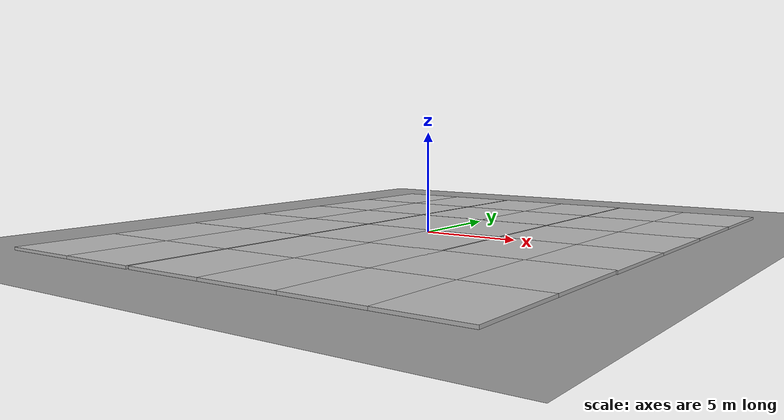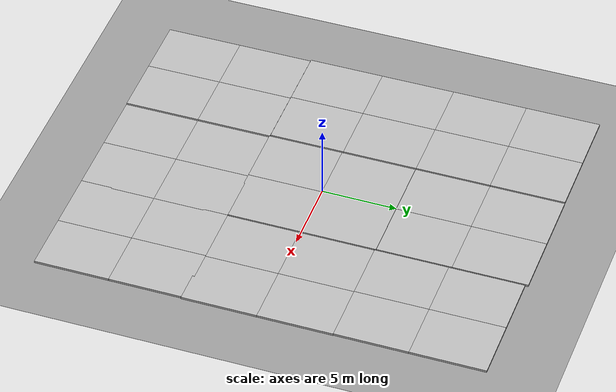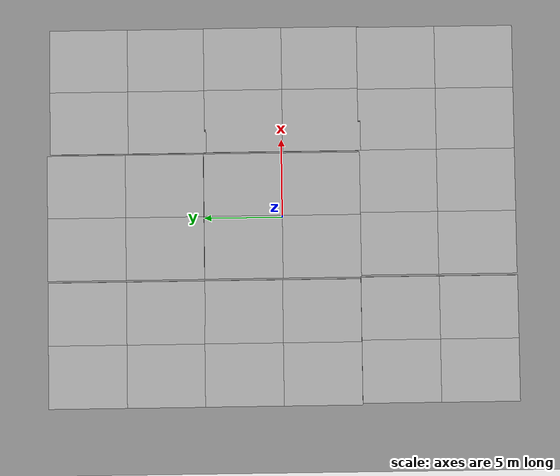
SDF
<?xml version='1.0'?>
<sdf version='1.7'>
  <model name='hydroponics.sdf'>
    <model name='ground_plane'>
      <static>1</static>
      <link name='link'>
        <collision name='collision'>
          <geometry>
            <plane>
              <normal>0 0 1</normal>
              <size>100 100</size>
            </plane>
          </geometry>
          <surface>
            <contact>
              <collide_bitmask>65535</collide_bitmask>
            </contact>
            <friction>
              <ode>
                <mu>100</mu>
                <mu2>50</mu2>
              </ode>
            </friction>
          </surface>
        </collision>
        <visual name='visual'>
          <cast_shadows>0</cast_shadows>
          <geometry>
            <plane>
              <normal>0 0 1</normal>
              <size>100 100</size>
            </plane>
          </geometry>
          <material>
            <script>
              <uri>file://media/materials/scripts/gazebo.material</uri>
              <name>Gazebo/Grey</name>
            </script>
          </material>
        </visual>
      </link>
      <pose>-1.2796 -0.083864 0 0 -0 0</pose>
    </model>
    <model name='mud_box'>
      <static>1</static>
      <link name='link'>
        <collision name='collision'>
          <geometry>
            <box>
              <size>8 10 0.2</size>
            </box>
          </geometry>
        </collision>
        <visual name='visual_1'>
          <pose>-2 2.5 0 0 -0 0</pose>
          <cast_shadows>0</cast_shadows>
          <geometry>
            <box>
              <size>4 5 0.2</size>
            </box>
          </geometry>
          <material>
            <script>
              <uri>model://mud_box/materials/scripts</uri>
              <uri>model://mud_box/materials/textures</uri>
              <name>vrc/mud</name>
            </script>
          </material>
        </visual>
        <visual name='visual_2'>
          <pose>2 2.5 0 0 -0 0</pose>
          <cast_shadows>0</cast_shadows>
          <geometry>
            <box>
              <size>4 5 0.2</size>
            </box>
          </geometry>
          <material>
            <script>
              <uri>model://mud_box/materials/scripts</uri>
              <uri>model://mud_box/materials/textures</uri>
              <name>vrc/mud</name>
            </script>
          </material>
        </visual>
        <visual name='visual_3'>
          <pose>2 -2.5 0 0 -0 0</pose>
          <cast_shadows>0</cast_shadows>
          <geometry>
            <box>
              <size>4 5 0.2</size>
            </box>
          </geometry>
          <material>
            <script>
              <uri>model://mud_box/materials/scripts</uri>
              <uri>model://mud_box/materials/textures</uri>
              <name>vrc/mud</name>
            </script>
          </material>
        </visual>
        <visual name='visual_4'>
          <pose>-2 -2.5 0 0 -0 0</pose>
          <cast_shadows>0</cast_shadows>
          <geometry>
            <box>
              <size>4 5 0.2</size>
            </box>
          </geometry>
          <material>
            <script>
              <uri>model://mud_box/materials/scripts</uri>
              <uri>model://mud_box/materials/textures</uri>
              <name>vrc/mud</name>
            </script>
          </material>
        </visual>
      </link>
      <pose>-7.98032 0.053884 0 0 -0 0</pose>
    </model>
    <model name='mud_box_0'>
      <static>1</static>
      <link name='link'>
        <collision name='collision'>
          <geometry>
            <box>
              <size>8 10 0.2</size>
            </box>
          </geometry>
        </collision>
        <visual name='visual_1'>
          <pose>-2 2.5 0 0 -0 0</pose>
          <cast_shadows>0</cast_shadows>
          <geometry>
            <box>
              <size>4 5 0.2</size>
            </box>
          </geometry>
          <material>
            <script>
              <uri>model://mud_box/materials/scripts</uri>
              <uri>model://mud_box/materials/textures</uri>
              <name>vrc/mud</name>
            </script>
          </material>
        </visual>
        <visual name='visual_2'>
          <pose>2 2.5 0 0 -0 0</pose>
          <cast_shadows>0</cast_shadows>
          <geometry>
            <box>
              <size>4 5 0.2</size>
            </box>
          </geometry>
          <material>
            <script>
              <uri>model://mud_box/materials/scripts</uri>
              <uri>model://mud_box/materials/textures</uri>
              <name>vrc/mud</name>
            </script>
          </material>
        </visual>
        <visual name='visual_3'>
          <pose>2 -2.5 0 0 -0 0</pose>
          <cast_shadows>0</cast_shadows>
          <geometry>
            <box>
              <size>4 5 0.2</size>
            </box>
          </geometry>
          <material>
            <script>
              <uri>model://mud_box/materials/scripts</uri>
              <uri>model://mud_box/materials/textures</uri>
              <name>vrc/mud</name>
            </script>
          </material>
        </visual>
        <visual name='visual_4'>
          <pose>-2 -2.5 0 0 -0 0</pose>
          <cast_shadows>0</cast_shadows>
          <geometry>
            <box>
              <size>4 5 0.2</size>
            </box>
          </geometry>
          <material>
            <script>
              <uri>model://mud_box/materials/scripts</uri>
              <uri>model://mud_box/materials/textures</uri>
              <name>vrc/mud</name>
            </script>
          </material>
        </visual>
      </link>
      <pose>-7.8782 -9.9507 0 0 -0 0</pose>
    </model>
    <model name='mud_box_1'>
      <static>1</static>
      <link name='link'>
        <collision name='collision'>
          <geometry>
            <box>
              <size>8 10 0.2</size>
            </box>
          </geometry>
        </collision>
        <visual name='visual_1'>
          <pose>-2 2.5 0 0 -0 0</pose>
          <cast_shadows>0</cast_shadows>
          <geometry>
            <box>
              <size>4 5 0.2</size>
            </box>
          </geometry>
          <material>
            <script>
              <uri>model://mud_box/materials/scripts</uri>
              <uri>model://mud_box/materials/textures</uri>
              <name>vrc/mud</name>
            </script>
          </material>
        </visual>
        <visual name='visual_2'>
          <pose>2 2.5 0 0 -0 0</pose>
          <cast_shadows>0</cast_shadows>
          <geometry>
            <box>
              <size>4 5 0.2</size>
            </box>
          </geometry>
          <material>
            <script>
              <uri>model://mud_box/materials/scripts</uri>
              <uri>model://mud_box/materials/textures</uri>
              <name>vrc/mud</name>
            </script>
          </material>
        </visual>
        <visual name='visual_3'>
          <pose>2 -2.5 0 0 -0 0</pose>
          <cast_shadows>0</cast_shadows>
          <geometry>
            <box>
              <size>4 5 0.2</size>
            </box>
          </geometry>
          <material>
            <script>
              <uri>model://mud_box/materials/scripts</uri>
              <uri>model://mud_box/materials/textures</uri>
              <name>vrc/mud</name>
            </script>
          </material>
        </visual>
        <visual name='visual_4'>
          <pose>-2 -2.5 0 0 -0 0</pose>
          <cast_shadows>0</cast_shadows>
          <geometry>
            <box>
              <size>4 5 0.2</size>
            </box>
          </geometry>
          <material>
            <script>
              <uri>model://mud_box/materials/scripts</uri>
              <uri>model://mud_box/materials/textures</uri>
              <name>vrc/mud</name>
            </script>
          </material>
        </visual>
      </link>
      <pose>-7.98798 10.0127 0 0 -0 0</pose>
    </model>
    <model name='mud_box_2'>
      <static>1</static>
      <link name='link'>
        <collision name='collision'>
          <geometry>
            <box>
              <size>8 10 0.2</size>
            </box>
          </geometry>
        </collision>
        <visual name='visual_1'>
          <pose>-2 2.5 0 0 -0 0</pose>
          <cast_shadows>0</cast_shadows>
          <geometry>
            <box>
              <size>4 5 0.2</size>
            </box>
          </geometry>
          <material>
            <script>
              <uri>model://mud_box/materials/scripts</uri>
              <uri>model://mud_box/materials/textures</uri>
              <name>vrc/mud</name>
            </script>
          </material>
        </visual>
        <visual name='visual_2'>
          <pose>2 2.5 0 0 -0 0</pose>
          <cast_shadows>0</cast_shadows>
          <geometry>
            <box>
              <size>4 5 0.2</size>
            </box>
          </geometry>
          <material>
            <script>
              <uri>model://mud_box/materials/scripts</uri>
              <uri>model://mud_box/materials/textures</uri>
              <name>vrc/mud</name>
            </script>
          </material>
        </visual>
        <visual name='visual_3'>
          <pose>2 -2.5 0 0 -0 0</pose>
          <cast_shadows>0</cast_shadows>
          <geometry>
            <box>
              <size>4 5 0.2</size>
            </box>
          </geometry>
          <material>
            <script>
              <uri>model://mud_box/materials/scripts</uri>
              <uri>model://mud_box/materials/textures</uri>
              <name>vrc/mud</name>
            </script>
          </material>
        </visual>
        <visual name='visual_4'>
          <pose>-2 -2.5 0 0 -0 0</pose>
          <cast_shadows>0</cast_shadows>
          <geometry>
            <box>
              <size>4 5 0.2</size>
            </box>
          </geometry>
          <material>
            <script>
              <uri>model://mud_box/materials/scripts</uri>
              <uri>model://mud_box/materials/textures</uri>
              <name>vrc/mud</name>
            </script>
          </material>
        </visual>
      </link>
      <pose>0.251748 -9.92117 0 0 -0 0</pose>
    </model>
    <model name='mud_box_3'>
      <static>1</static>
      <link name='link'>
        <collision name='collision'>
          <geometry>
            <box>
              <size>8 10 0.2</size>
            </box>
          </geometry>
        </collision>
        <visual name='visual_1'>
          <pose>-2 2.5 0 0 -0 0</pose>
          <cast_shadows>0</cast_shadows>
          <geometry>
            <box>
              <size>4 5 0.2</size>
            </box>
          </geometry>
          <material>
            <script>
              <uri>model://mud_box/materials/scripts</uri>
              <uri>model://mud_box/materials/textures</uri>
              <name>vrc/mud</name>
            </script>
          </material>
        </visual>
        <visual name='visual_2'>
          <pose>2 2.5 0 0 -0 0</pose>
          <cast_shadows>0</cast_shadows>
          <geometry>
            <box>
              <size>4 5 0.2</size>
            </box>
          </geometry>
          <material>
            <script>
              <uri>model://mud_box/materials/scripts</uri>
              <uri>model://mud_box/materials/textures</uri>
              <name>vrc/mud</name>
            </script>
          </material>
        </visual>
        <visual name='visual_3'>
          <pose>2 -2.5 0 0 -0 0</pose>
          <cast_shadows>0</cast_shadows>
          <geometry>
            <box>
              <size>4 5 0.2</size>
            </box>
          </geometry>
          <material>
            <script>
              <uri>model://mud_box/materials/scripts</uri>
              <uri>model://mud_box/materials/textures</uri>
              <name>vrc/mud</name>
            </script>
          </material>
        </visual>
        <visual name='visual_4'>
          <pose>-2 -2.5 0 0 -0 0</pose>
          <cast_shadows>0</cast_shadows>
          <geometry>
            <box>
              <size>4 5 0.2</size>
            </box>
          </geometry>
          <material>
            <script>
              <uri>model://mud_box/materials/scripts</uri>
              <uri>model://mud_box/materials/textures</uri>
              <name>vrc/mud</name>
            </script>
          </material>
        </visual>
      </link>
      <pose>0.134373 0.011271 0 0 -0 0</pose>
    </model>
    <model name='mud_box_4'>
      <static>1</static>
      <link name='link'>
        <collision name='collision'>
          <geometry>
            <box>
              <size>8 10 0.2</size>
            </box>
          </geometry>
        </collision>
        <visual name='visual_1'>
          <pose>-2 2.5 0 0 -0 0</pose>
          <cast_shadows>0</cast_shadows>
          <geometry>
            <box>
              <size>4 5 0.2</size>
            </box>
          </geometry>
          <material>
            <script>
              <uri>model://mud_box/materials/scripts</uri>
              <uri>model://mud_box/materials/textures</uri>
              <name>vrc/mud</name>
            </script>
          </material>
        </visual>
        <visual name='visual_2'>
          <pose>2 2.5 0 0 -0 0</pose>
          <cast_shadows>0</cast_shadows>
          <geometry>
            <box>
              <size>4 5 0.2</size>
            </box>
          </geometry>
          <material>
            <script>
              <uri>model://mud_box/materials/scripts</uri>
              <uri>model://mud_box/materials/textures</uri>
              <name>vrc/mud</name>
            </script>
          </material>
        </visual>
        <visual name='visual_3'>
          <pose>2 -2.5 0 0 -0 0</pose>
          <cast_shadows>0</cast_shadows>
          <geometry>
            <box>
              <size>4 5 0.2</size>
            </box>
          </geometry>
          <material>
            <script>
              <uri>model://mud_box/materials/scripts</uri>
              <uri>model://mud_box/materials/textures</uri>
              <name>vrc/mud</name>
            </script>
          </material>
        </visual>
        <visual name='visual_4'>
          <pose>-2 -2.5 0 0 -0 0</pose>
          <cast_shadows>0</cast_shadows>
          <geometry>
            <box>
              <size>4 5 0.2</size>
            </box>
          </geometry>
          <material>
            <script>
              <uri>model://mud_box/materials/scripts</uri>
              <uri>model://mud_box/materials/textures</uri>
              <name>vrc/mud</name>
            </script>
          </material>
        </visual>
      </link>
      <pose>0.120972 10.0262 0 0 -0 0</pose>
    </model>
    <model name='mud_box_5'>
      <static>1</static>
      <link name='link'>
        <collision name='collision'>
          <geometry>
            <box>
              <size>8 10 0.2</size>
            </box>
          </geometry>
        </collision>
        <visual name='visual_1'>
          <pose>-2 2.5 0 0 -0 0</pose>
          <cast_shadows>0</cast_shadows>
          <geometry>
            <box>
              <size>4 5 0.2</size>
            </box>
          </geometry>
          <material>
            <script>
              <uri>model://mud_box/materials/scripts</uri>
              <uri>model://mud_box/materials/textures</uri>
              <name>vrc/mud</name>
            </script>
          </material>
        </visual>
        <visual name='visual_2'>
          <pose>2 2.5 0 0 -0 0</pose>
          <cast_shadows>0</cast_shadows>
          <geometry>
            <box>
              <size>4 5 0.2</size>
            </box>
          </geometry>
          <material>
            <script>
              <uri>model://mud_box/materials/scripts</uri>
              <uri>model://mud_box/materials/textures</uri>
              <name>vrc/mud</name>
            </script>
          </material>
        </visual>
        <visual name='visual_3'>
          <pose>2 -2.5 0 0 -0 0</pose>
          <cast_shadows>0</cast_shadows>
          <geometry>
            <box>
              <size>4 5 0.2</size>
            </box>
          </geometry>
          <material>
            <script>
              <uri>model://mud_box/materials/scripts</uri>
              <uri>model://mud_box/materials/textures</uri>
              <name>vrc/mud</name>
            </script>
          </material>
        </visual>
        <visual name='visual_4'>
          <pose>-2 -2.5 0 0 -0 0</pose>
          <cast_shadows>0</cast_shadows>
          <geometry>
            <box>
              <size>4 5 0.2</size>
            </box>
          </geometry>
          <material>
            <script>
              <uri>model://mud_box/materials/scripts</uri>
              <uri>model://mud_box/materials/textures</uri>
              <name>vrc/mud</name>
            </script>
          </material>
        </visual>
      </link>
      <pose>8.1778 -9.91928 0 0 -0 0</pose>
    </model>
    <model name='mud_box_6'>
      <static>1</static>
      <link name='link'>
        <collision name='collision'>
          <geometry>
            <box>
              <size>8 10 0.2</size>
            </box>
          </geometry>
        </collision>
        <visual name='visual_1'>
          <pose>-2 2.5 0 0 -0 0</pose>
          <cast_shadows>0</cast_shadows>
          <geometry>
            <box>
              <size>4 5 0.2</size>
            </box>
          </geometry>
          <material>
            <script>
              <uri>model://mud_box/materials/scripts</uri>
              <uri>model://mud_box/materials/textures</uri>
              <name>vrc/mud</name>
            </script>
          </material>
        </visual>
        <visual name='visual_2'>
          <pose>2 2.5 0 0 -0 0</pose>
          <cast_shadows>0</cast_shadows>
          <geometry>
            <box>
              <size>4 5 0.2</size>
            </box>
          </geometry>
          <material>
            <script>
              <uri>model://mud_box/materials/scripts</uri>
              <uri>model://mud_box/materials/textures</uri>
              <name>vrc/mud</name>
            </script>
          </material>
        </visual>
        <visual name='visual_3'>
          <pose>2 -2.5 0 0 -0 0</pose>
          <cast_shadows>0</cast_shadows>
          <geometry>
            <box>
              <size>4 5 0.2</size>
            </box>
          </geometry>
          <material>
            <script>
              <uri>model://mud_box/materials/scripts</uri>
              <uri>model://mud_box/materials/textures</uri>
              <name>vrc/mud</name>
            </script>
          </material>
        </visual>
        <visual name='visual_4'>
          <pose>-2 -2.5 0 0 -0 0</pose>
          <cast_shadows>0</cast_shadows>
          <geometry>
            <box>
              <size>4 5 0.2</size>
            </box>
          </geometry>
          <material>
            <script>
              <uri>model://mud_box/materials/scripts</uri>
              <uri>model://mud_box/materials/textures</uri>
              <name>vrc/mud</name>
            </script>
          </material>
        </visual>
      </link>
      <pose>8.23257 -0.062717 0 0 -0 0</pose>
    </model>
    <model name='mud_box_7'>
      <static>1</static>
      <link name='link'>
        <collision name='collision'>
          <geometry>
            <box>
              <size>8 10 0.2</size>
            </box>
          </geometry>
        </collision>
        <visual name='visual_1'>
          <pose>-2 2.5 0 0 -0 0</pose>
          <cast_shadows>0</cast_shadows>
          <geometry>
            <box>
              <size>4 5 0.2</size>
            </box>
          </geometry>
          <material>
            <script>
              <uri>model://mud_box/materials/scripts</uri>
              <uri>model://mud_box/materials/textures</uri>
              <name>vrc/mud</name>
            </script>
          </material>
        </visual>
        <visual name='visual_2'>
          <pose>2 2.5 0 0 -0 0</pose>
          <cast_shadows>0</cast_shadows>
          <geometry>
            <box>
              <size>4 5 0.2</size>
            </box>
          </geometry>
          <material>
            <script>
              <uri>model://mud_box/materials/scripts</uri>
              <uri>model://mud_box/materials/textures</uri>
              <name>vrc/mud</name>
            </script>
          </material>
        </visual>
        <visual name='visual_3'>
          <pose>2 -2.5 0 0 -0 0</pose>
          <cast_shadows>0</cast_shadows>
          <geometry>
            <box>
              <size>4 5 0.2</size>
            </box>
          </geometry>
          <material>
            <script>
              <uri>model://mud_box/materials/scripts</uri>
              <uri>model://mud_box/materials/textures</uri>
              <name>vrc/mud</name>
            </script>
          </material>
        </visual>
        <visual name='visual_4'>
          <pose>-2 -2.5 0 0 -0 0</pose>
          <cast_shadows>0</cast_shadows>
          <geometry>
            <box>
              <size>4 5 0.2</size>
            </box>
          </geometry>
          <material>
            <script>
              <uri>model://mud_box/materials/scripts</uri>
              <uri>model://mud_box/materials/textures</uri>
              <name>vrc/mud</name>
            </script>
          </material>
        </visual>
      </link>
      <pose>8.20864 9.83356 0 0 -0 0</pose>
    </model>
    <static>0</static>
    <allow_auto_disable>1</allow_auto_disable>
  </model>
</sdf>
